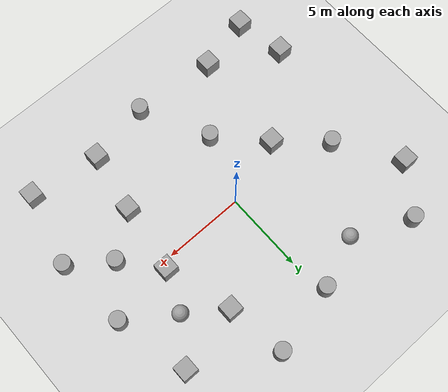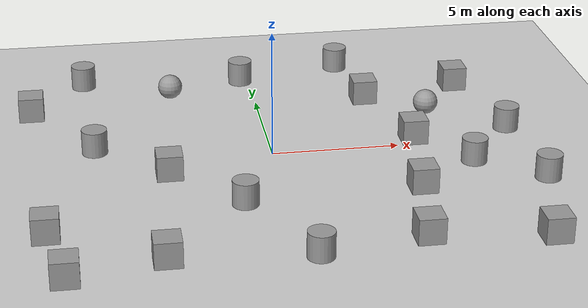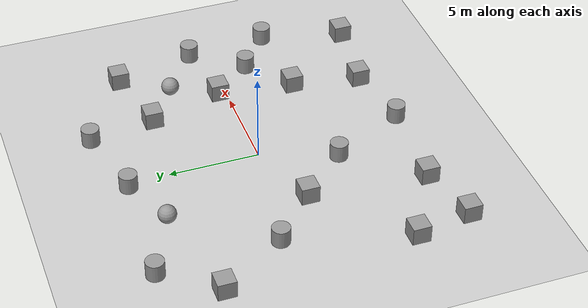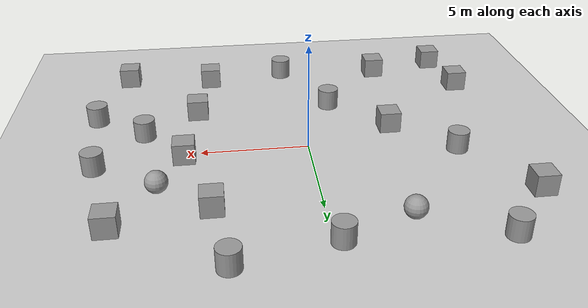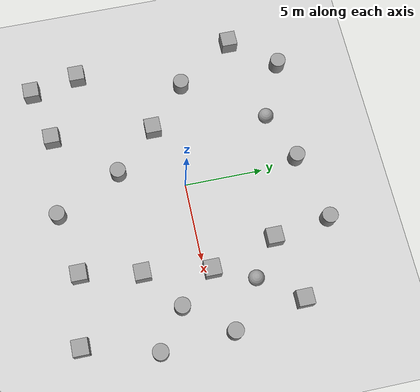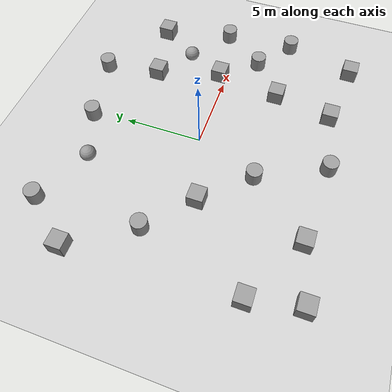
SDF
<sdf version="1.6">
 <world name="default">
  <light name="sun" type="directional">
   <pose>0 0 10 0 -0 0</pose>
   <diffuse>0.8 0.8 0.8 1</diffuse>
   <specular>0.1 0.1 0.1 1</specular>
   <attenuation>
    <range>1000</range>
    <constant>0.9</constant>
    <linear>0.01</linear>
    <quadratic>0.001</quadratic>
   </attenuation>
   <direction>-0.5 0.5 -1</direction>
  </light>
  <model name="ground_plane">
   <static>1</static>
   <link name="link">
    <collision name="collision">
     <geometry><plane><normal>0 0 1</normal><size>100 100</size></plane></geometry>
     <surface><friction><ode><mu>100</mu><mu2>50</mu2></ode></friction></surface>
    </collision>
    <visual name="visual">
     <cast_shadows>0</cast_shadows>
     <geometry><plane><normal>0 0 1</normal><size>100 100</size></plane></geometry>
     <material>
      <script><uri>file://media/materials/scripts/gazebo.material</uri><name>Gazebo/Grey</name></script>
     </material>
    </visual>
   </link>
  </model>
  <gravity>0 0 -9.8</gravity>
  <magnetic_field>6e-06 2.3e-05 -4.2e-05</magnetic_field>
  <atmosphere type="adiabatic"/>
  <physics name="default_physics" default="0" type="ode">
   <max_step_size>0.001</max_step_size>
   <real_time_factor>1</real_time_factor>
   <real_time_update_rate>1000</real_time_update_rate>
  </physics>
  <scene><ambient>0.4 0.4 0.4 1</ambient><background>0.7 0.7 0.7 1</background><shadows>1</shadows></scene>
  <spherical_coordinates>
   <surface_model>EARTH_WGS84</surface_model>
   <latitude_deg>0</latitude_deg>
   <longitude_deg>0</longitude_deg>
   <elevation>0</elevation>
   <heading_deg>0</heading_deg>
  </spherical_coordinates>
  <model name="unit_cylinder_0">
   <pose>-6.83179 1.10279 0.499992 -3e-06 2e-06 0</pose>
   <link name="link">
    <inertial>
     <mass>1</mass>
     <inertia><ixx>0.145833</ixx><ixy>0</ixy><ixz>0</ixz><iyy>0.145833</iyy><iyz>0</iyz><izz>0.125</izz></inertia>
    </inertial>
    <collision name="collision">
     <geometry><cylinder><radius>0.5</radius><length>1</length></cylinder></geometry>
    </collision>
    <visual name="visual">
     <geometry><cylinder><radius>0.5</radius><length>1</length></cylinder></geometry>
     <material>
      <script><name>Gazebo/Grey</name><uri>file://media/materials/scripts/gazebo.material</uri></script>
     </material>
    </visual>
   </link>
  </model>
  <model name="unit_cylinder_1">
   <pose>-1.56724 -4.0623 0.499992 -3e-06 2e-06 0</pose>
   <link name="link">
    <inertial>
     <mass>1</mass>
     <inertia><ixx>0.145833</ixx><ixy>0</ixy><ixz>0</ixz><iyy>0.145833</iyy><iyz>0</iyz><izz>0.125</izz></inertia>
    </inertial>
    <collision name="collision">
     <geometry><cylinder><radius>0.5</radius><length>1</length></cylinder></geometry>
    </collision>
    <visual name="visual">
     <geometry><cylinder><radius>0.5</radius><length>1</length></cylinder></geometry>
     <material>
      <script><name>Gazebo/Grey</name><uri>file://media/materials/scripts/gazebo.material</uri></script>
     </material>
    </visual>
   </link>
  </model>
  <model name="unit_cylinder_2">
   <pose>-7.0598 7.73714 0.499998 3e-06 -2e-06 0</pose>
   <link name="link">
    <inertial>
     <mass>1</mass>
     <inertia><ixx>0.145833</ixx><ixy>0</ixy><ixz>0</ixz><iyy>0.145833</iyy><iyz>0</iyz><izz>0.125</izz></inertia>
    </inertial>
    <collision name="collision">
     <geometry><cylinder><radius>0.5</radius><length>1</length></cylinder></geometry>
    </collision>
    <visual name="visual">
     <geometry><cylinder><radius>0.5</radius><length>1</length></cylinder></geometry>
     <material>
      <script><name>Gazebo/Grey</name><uri>file://media/materials/scripts/gazebo.material</uri></script>
     </material>
    </visual>
   </link>
  </model>
  <model name="unit_cylinder_3">
   <pose>-0.354225 7.32288 0.499993 -3e-06 2e-06 0</pose>
   <link name="link">
    <inertial>
     <mass>1</mass>
     <inertia><ixx>0.145833</ixx><ixy>0</ixy><ixz>0</ixz><iyy>0.145833</iyy><iyz>0</iyz><izz>0.125</izz></inertia>
    </inertial>
    <collision name="collision">
     <geometry><cylinder><radius>0.5</radius><length>1</length></cylinder></geometry>
    </collision>
    <visual name="visual">
     <geometry><cylinder><radius>0.5</radius><length>1</length></cylinder></geometry>
     <material>
      <script><name>Gazebo/Grey</name><uri>file://media/materials/scripts/gazebo.material</uri></script>
     </material>
    </visual>
   </link>
  </model>
  <model name="unit_sphere_0">
   <pose>-3.47396 6.08581 0.5 0 -0 0</pose>
   <link name="link">
    <inertial>
     <mass>1</mass>
     <inertia><ixx>0.1</ixx><ixy>0</ixy><ixz>0</ixz><iyy>0.1</iyy><iyz>0</iyz><izz>0.1</izz></inertia>
    </inertial>
    <collision name="collision"><geometry><sphere><radius>0.5</radius></sphere></geometry></collision>
    <visual name="visual">
     <geometry><sphere><radius>0.5</radius></sphere></geometry>
     <material>
      <script><name>Gazebo/Grey</name><uri>file://media/materials/scripts/gazebo.material</uri></script>
     </material>
    </visual>
   </link>
  </model>
  <model name="unit_box_0">
   <pose>4.52569 4.64951 0.499995 0 1e-05 0</pose>
   <link name="link">
    <inertial>
     <mass>1</mass>
     <inertia>
      <ixx>0.166667</ixx>
      <ixy>0</ixy>
      <ixz>0</ixz>
      <iyy>0.166667</iyy>
      <iyz>0</iyz>
      <izz>0.166667</izz>
     </inertia>
    </inertial>
    <collision name="collision"><geometry><box><size>1 1 1</size></box></geometry></collision>
    <visual name="visual">
     <geometry><box><size>1 1 1</size></box></geometry>
     <material>
      <script><name>Gazebo/Grey</name><uri>file://media/materials/scripts/gazebo.material</uri></script>
     </material>
    </visual>
   </link>
  </model>
  <model name="unit_box_1">
   <pose>-4.12122 -1.33692 0.499995 -1e-05 0 0</pose>
   <link name="link">
    <inertial>
     <mass>1</mass>
     <inertia>
      <ixx>0.166667</ixx>
      <ixy>0</ixy>
      <ixz>0</ixz>
      <iyy>0.166667</iyy>
      <iyz>0</iyz>
      <izz>0.166667</izz>
     </inertia>
    </inertial>
    <collision name="collision"><geometry><box><size>1 1 1</size></box></geometry></collision>
    <visual name="visual">
     <geometry><box><size>1 1 1</size></box></geometry>
     <material>
      <script><name>Gazebo/Grey</name><uri>file://media/materials/scripts/gazebo.material</uri></script>
     </material>
    </visual>
   </link>
  </model>
  <model name="unit_box_2">
   <pose>-4.71638 -7.85982 0.499995 0 1e-05 0</pose>
   <link name="link">
    <inertial>
     <mass>1</mass>
     <inertia>
      <ixx>0.166667</ixx>
      <ixy>0</ixy>
      <ixz>0</ixz>
      <iyy>0.166667</iyy>
      <iyz>0</iyz>
      <izz>0.166667</izz>
     </inertia>
    </inertial>
    <collision name="collision"><geometry><box><size>1 1 1</size></box></geometry></collision>
    <visual name="visual">
     <geometry><box><size>1 1 1</size></box></geometry>
     <material>
      <script><name>Gazebo/Grey</name><uri>file://media/materials/scripts/gazebo.material</uri></script>
     </material>
    </visual>
   </link>
  </model>
  <model name="unit_box_3">
   <pose>4.41461 -7.54476 0.499995 -1e-05 0 0</pose>
   <link name="link">
    <inertial>
     <mass>1</mass>
     <inertia>
      <ixx>0.166667</ixx>
      <ixy>0</ixy>
      <ixz>0</ixz>
      <iyy>0.166667</iyy>
      <iyz>0</iyz>
      <izz>0.166667</izz>
     </inertia>
    </inertial>
    <collision name="collision"><geometry><box><size>1 1 1</size></box></geometry></collision>
    <visual name="visual">
     <geometry><box><size>1 1 1</size></box></geometry>
     <material>
      <script><name>Gazebo/Grey</name><uri>file://media/materials/scripts/gazebo.material</uri></script>
     </material>
    </visual>
   </link>
  </model>
  <model name="unit_box_4">
   <pose>5.10316 -3.7553 0.499995 0 1e-05 0</pose>
   <link name="link">
    <inertial>
     <mass>1</mass>
     <inertia>
      <ixx>0.166667</ixx>
      <ixy>0</ixy>
      <ixz>0</ixz>
      <iyy>0.166667</iyy>
      <iyz>0</iyz>
      <izz>0.166667</izz>
     </inertia>
    </inertial>
    <collision name="collision"><geometry><box><size>1 1 1</size></box></geometry></collision>
    <visual name="visual">
     <geometry><box><size>1 1 1</size></box></geometry>
     <material>
      <script><name>Gazebo/Grey</name><uri>file://media/materials/scripts/gazebo.material</uri></script>
     </material>
    </visual>
   </link>
  </model>
  <model name="unit_box_5">
   <pose>5.71842 0.468116 0.499995 -1e-05 0 0</pose>
   <link name="link">
    <inertial>
     <mass>1</mass>
     <inertia>
      <ixx>0.166667</ixx>
      <ixy>0</ixy>
      <ixz>0</ixz>
      <iyy>0.166667</iyy>
      <iyz>0</iyz>
      <izz>0.166667</izz>
     </inertia>
    </inertial>
    <collision name="collision"><geometry><box><size>1 1 1</size></box></geometry></collision>
    <visual name="visual">
     <geometry><box><size>1 1 1</size></box></geometry>
     <material>
      <script><name>Gazebo/Grey</name><uri>file://media/materials/scripts/gazebo.material</uri></script>
     </material>
    </visual>
   </link>
  </model>
  <model name="unit_cylinder_4">
   <pose>9.66556 0.996385 0.499992 -3e-06 3e-06 0</pose>
   <link name="link">
    <inertial>
     <mass>1</mass>
     <inertia><ixx>0.145833</ixx><ixy>0</ixy><ixz>0</ixz><iyy>0.145833</iyy><iyz>0</iyz><izz>0.125</izz></inertia>
    </inertial>
    <collision name="collision">
     <geometry><cylinder><radius>0.5</radius><length>1</length></cylinder></geometry>
    </collision>
    <visual name="visual">
     <geometry><cylinder><radius>0.5</radius><length>1</length></cylinder></geometry>
     <material>
      <script><name>Gazebo/Grey</name><uri>file://media/materials/scripts/gazebo.material</uri></script>
     </material>
    </visual>
   </link>
  </model>
  <model name="unit_cylinder_5">
   <pose>9.99543 -3.58148 0.499998 3e-06 -3e-06 0</pose>
   <link name="link">
    <inertial>
     <mass>1</mass>
     <inertia><ixx>0.145833</ixx><ixy>0</ixy><ixz>0</ixz><iyy>0.145833</iyy><iyz>0</iyz><izz>0.125</izz></inertia>
    </inertial>
    <collision name="collision">
     <geometry><cylinder><radius>0.5</radius><length>1</length></cylinder></geometry>
    </collision>
    <visual name="visual">
     <geometry><cylinder><radius>0.5</radius><length>1</length></cylinder></geometry>
     <material>
      <script><name>Gazebo/Grey</name><uri>file://media/materials/scripts/gazebo.material</uri></script>
     </material>
    </visual>
   </link>
  </model>
  <model name="unit_box_6">
   <pose>8.58998 5.51856 0.499995 0 1e-05 0</pose>
   <link name="link">
    <inertial>
     <mass>1</mass>
     <inertia>
      <ixx>0.166667</ixx>
      <ixy>0</ixy>
      <ixz>0</ixz>
      <iyy>0.166667</iyy>
      <iyz>0</iyz>
      <izz>0.166667</izz>
     </inertia>
    </inertial>
    <collision name="collision"><geometry><box><size>1 1 1</size></box></geometry></collision>
    <visual name="visual">
     <geometry><box><size>1 1 1</size></box></geometry>
     <material>
      <script><name>Gazebo/Grey</name><uri>file://media/materials/scripts/gazebo.material</uri></script>
     </material>
    </visual>
   </link>
  </model>
  <model name="unit_box_7">
   <pose>-9.26684 4.86257 0.499995 -1e-05 0 0</pose>
   <link name="link">
    <inertial>
     <mass>1</mass>
     <inertia>
      <ixx>0.166667</ixx>
      <ixy>0</ixy>
      <ixz>0</ixz>
      <iyy>0.166667</iyy>
      <iyz>0</iyz>
      <izz>0.166667</izz>
     </inertia>
    </inertial>
    <collision name="collision"><geometry><box><size>1 1 1</size></box></geometry></collision>
    <visual name="visual">
     <geometry><box><size>1 1 1</size></box></geometry>
     <material>
      <script><name>Gazebo/Grey</name><uri>file://media/materials/scripts/gazebo.material</uri></script>
     </material>
    </visual>
   </link>
  </model>
  <model name="unit_cylinder_6">
   <pose>3.97143 8.29742 0.499992 -3e-06 4e-06 0</pose>
   <link name="link">
    <inertial>
     <mass>1</mass>
     <inertia><ixx>0.145833</ixx><ixy>0</ixy><ixz>0</ixz><iyy>0.145833</iyy><iyz>0</iyz><izz>0.125</izz></inertia>
    </inertial>
    <collision name="collision">
     <geometry><cylinder><radius>0.5</radius><length>1</length></cylinder></geometry>
    </collision>
    <visual name="visual">
     <geometry><cylinder><radius>0.5</radius><length>1</length></cylinder></geometry>
     <material>
      <script><name>Gazebo/Grey</name><uri>file://media/materials/scripts/gazebo.material</uri></script>
     </material>
    </visual>
   </link>
  </model>
  <model name="unit_cylinder_7">
   <pose>0.479744 -8.25208 0.499998 3e-06 -4e-06 0</pose>
   <link name="link">
    <inertial>
     <mass>1</mass>
     <inertia><ixx>0.145833</ixx><ixy>0</ixy><ixz>0</ixz><iyy>0.145833</iyy><iyz>0</iyz><izz>0.125</izz></inertia>
    </inertial>
    <collision name="collision">
     <geometry><cylinder><radius>0.5</radius><length>1</length></cylinder></geometry>
    </collision>
    <visual name="visual">
     <geometry><cylinder><radius>0.5</radius><length>1</length></cylinder></geometry>
     <material>
      <script><name>Gazebo/Grey</name><uri>file://media/materials/scripts/gazebo.material</uri></script>
     </material>
    </visual>
   </link>
  </model>
  <model name="unit_box_8">
   <pose>-8.17538 -8.6869 0.499995 0 1e-05 0</pose>
   <link name="link">
    <inertial>
     <mass>1</mass>
     <inertia>
      <ixx>0.166667</ixx>
      <ixy>0</ixy>
      <ixz>0</ixz>
      <iyy>0.166667</iyy>
      <iyz>0</iyz>
      <izz>0.166667</izz>
     </inertia>
    </inertial>
    <collision name="collision"><geometry><box><size>1 1 1</size></box></geometry></collision>
    <visual name="visual">
     <geometry><box><size>1 1 1</size></box></geometry>
     <material>
      <script><name>Gazebo/Grey</name><uri>file://media/materials/scripts/gazebo.material</uri></script>
     </material>
    </visual>
   </link>
  </model>
  <model name="unit_box_9">
   <pose>8.79549 -8.1387 0.499995 -1e-05 0 0</pose>
   <link name="link">
    <inertial>
     <mass>1</mass>
     <inertia>
      <ixx>0.166667</ixx>
      <ixy>0</ixy>
      <ixz>0</ixz>
      <iyy>0.166667</iyy>
      <iyz>0</iyz>
      <izz>0.166667</izz>
     </inertia>
    </inertial>
    <collision name="collision"><geometry><box><size>1 1 1</size></box></geometry></collision>
    <visual name="visual">
     <geometry><box><size>1 1 1</size></box></geometry>
     <material>
      <script><name>Gazebo/Grey</name><uri>file://media/materials/scripts/gazebo.material</uri></script>
     </material>
    </visual>
   </link>
  </model>
  <model name="unit_box_10">
   <pose>-8.78106 -5.57828 0.499995 0 1e-05 0</pose>
   <link name="link">
    <inertial>
     <mass>1</mass>
     <inertia>
      <ixx>0.166667</ixx>
      <ixy>0</ixy>
      <ixz>0</ixz>
      <iyy>0.166667</iyy>
      <iyz>0</iyz>
      <izz>0.166667</izz>
     </inertia>
    </inertial>
    <collision name="collision"><geometry><box><size>1 1 1</size></box></geometry></collision>
    <visual name="visual">
     <geometry><box><size>1 1 1</size></box></geometry>
     <material>
      <script><name>Gazebo/Grey</name><uri>file://media/materials/scripts/gazebo.material</uri></script>
     </material>
    </visual>
   </link>
  </model>
  <model name="unit_cylinder_8">
   <pose>7.60267 -1.78678 0.499993 -3e-06 -4e-06 -0</pose>
   <link name="link">
    <inertial>
     <mass>1</mass>
     <inertia><ixx>0.145833</ixx><ixy>0</ixy><ixz>0</ixz><iyy>0.145833</iyy><iyz>0</iyz><izz>0.125</izz></inertia>
    </inertial>
    <collision name="collision">
     <geometry><cylinder><radius>0.5</radius><length>1</length></cylinder></geometry>
    </collision>
    <visual name="visual">
     <geometry><cylinder><radius>0.5</radius><length>1</length></cylinder></geometry>
     <material>
      <script><name>Gazebo/Grey</name><uri>file://media/materials/scripts/gazebo.material</uri></script>
     </material>
    </visual>
   </link>
  </model>
  <model name="unit_sphere_1">
   <pose>6.80688 2.97304 0.5 0 -0 0</pose>
   <link name="link">
    <inertial>
     <mass>1</mass>
     <inertia><ixx>0.1</ixx><ixy>0</ixy><ixz>0</ixz><iyy>0.1</iyy><iyz>0</iyz><izz>0.1</izz></inertia>
    </inertial>
    <collision name="collision"><geometry><sphere><radius>0.5</radius></sphere></geometry></collision>
    <visual name="visual">
     <geometry><sphere><radius>0.5</radius></sphere></geometry>
     <material>
      <script><name>Gazebo/Grey</name><uri>file://media/materials/scripts/gazebo.material</uri></script>
     </material>
    </visual>
   </link>
  </model>
 </world>
</sdf>
